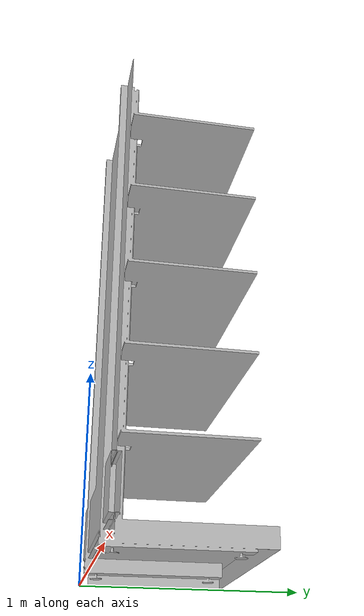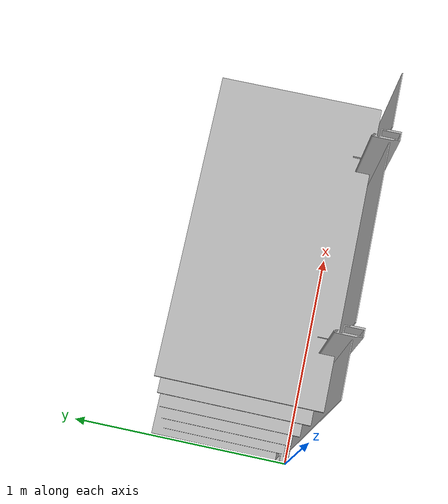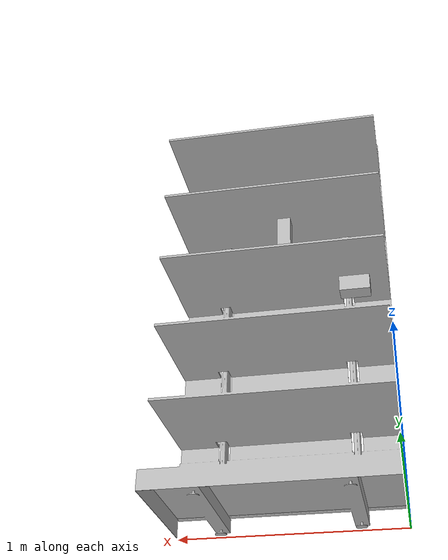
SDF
<?xml version="1.0"?>
<sdf version='1.6'>
  <model name='AH_shelf_filled_april'>
    <static>1</static>
    <link name='link'>
      <inertial>
        <mass>1</mass>
        <inertia>
          <ixx>1</ixx>
          <ixy>0</ixy>
          <ixz>0</ixz>
          <iyy>1</iyy>
          <iyz>0</iyz>
          <izz>1</izz>
        </inertia>
      </inertial>
      <pose frame=''>-0 0 0 0 0 0</pose>

      <visual name='visual'>
        <pose frame=''>0 0 0 0 0 0</pose>
        <geometry>
          <mesh>
            <uri>model://AH_shelf/AH_shelf.dae</uri>
            <scale>1 1 1</scale>
          </mesh>
        </geometry>
        <transparency>0</transparency>
        <cast_shadows>1</cast_shadows>
      </visual>

      <collision name='collision'>
        <laser_retro>0</laser_retro>
        <max_contacts>10</max_contacts>
        <pose frame=''>0 0 0 0 -0 0</pose>
        <geometry>
          <mesh>
            <uri>model://AH_shelf/AH_shelf.dae</uri>
            <scale>1 1 1</scale>
          </mesh>
        </geometry>
        <surface>
          <friction>
            <ode>
              <mu>1</mu>
              <mu2>1</mu2>
              <fdir1>0 0 0</fdir1>
              <slip1>0</slip1>
              <slip2>0</slip2>
            </ode>
            <torsional>
              <coefficient>1</coefficient>
              <patch_radius>0</patch_radius>
              <surface_radius>0</surface_radius>
              <use_patch_radius>1</use_patch_radius>
              <ode>
                <slip>0</slip>
              </ode>
            </torsional>
          </friction>
          <bounce>
            <restitution_coefficient>0</restitution_coefficient>
            <threshold>1e+06</threshold>
          </bounce>
          <contact>
            <collide_without_contact>0</collide_without_contact>
            <collide_without_contact_bitmask>1</collide_without_contact_bitmask>
            <collide_bitmask>1</collide_bitmask>
            <ode>
              <soft_cfm>0</soft_cfm>
              <soft_erp>0.2</soft_erp>
              <kp>1e+13</kp>
              <kd>1</kd>
              <max_vel>0.01</max_vel>
              <min_depth>0</min_depth>
            </ode>
            <bullet>
              <split_impulse>1</split_impulse>
              <split_impulse_penetration_threshold>-0.01</split_impulse_penetration_threshold>
              <soft_cfm>0</soft_cfm>
              <soft_erp>0.2</soft_erp>
              <kp>1e+13</kp>
              <kd>1</kd>
            </bullet>
          </contact>
        </surface>
      </collision>
    </link>

  <model name="board0">
    <pose>0 0.5 2.1 0 0 0</pose>
  </model>

  <model name="board1">
    <pose>0 0.5 1.6 0 0 0</pose>
  </model>

  <model name="board2">
    <pose>0 0.5 1.2 0 0 0</pose>

    <include>
      <uri>model://AH_hagelslag_puur_tag36_11_00018</uri>
      <pose>0.4444444444444444 0 0 0 0 1.57</pose>
    </include>
  </model>

  <model name="board3">
    <pose>0 0.5 0.9 0 0 0</pose>

    <include>
      <uri>model://AH_thee_mango_tag36_11_00030</uri>
      <pose>0.14285714285714285 0 0 0 0 1.57</pose>
    </include>
  </model>

  <model name="board4">
    <pose>0 0.5 0.65 0 0 0</pose>
  </model>

  <model name="board5">
    <pose>0 0.5 0.25 0 0 0</pose>
  </model>

  </model>
</sdf>

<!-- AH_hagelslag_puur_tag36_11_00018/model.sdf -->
<sdf version='1.6'>
  <model name='AH_hagelslag_puur_tag36_11_00018'>
    <static>0</static>
    <link name='link_0'>

      <inertial>
        <mass>0.1</mass>
        <inertia>
          <ixx>1.4e-03</ixx>
          <ixy>0</ixy>
          <ixz>0</ixz>
          <iyy>1.4e-03</iyy>
          <iyz>0</iyz>
          <izz>2.8e-03</izz>
        </inertia>
      </inertial>

      <pose frame=''>-0 0 0 0 -0 0</pose>

      <visual name='visual'>
        <pose frame=''>0 0 0 0 -0 0</pose>
        <geometry>
          <mesh>
            <uri>model://AH_hagelslag_puur/AH_hagelslag_puur_tag36_11_00018/AH_hagelslag_puur_tag36_11_00018.dae</uri>
            <scale>1 1 1</scale>
          </mesh>
        </geometry>
        <transparency>0</transparency>
        <cast_shadows>1</cast_shadows>
      </visual>

      <collision name='collision'>
        <laser_retro>0</laser_retro>
        <max_contacts>10</max_contacts>
        <pose frame=''>0 0 0 0 -0 0</pose>
        <geometry>
          <mesh>
            <uri>model://AH_hagelslag_puur/AH_hagelslag_puur_tag36_11_00018/AH_hagelslag_puur_tag36_11_00018.dae</uri>
            <scale>1 1 1</scale>
          </mesh>
        </geometry>
        <surface>
          <friction>
            <ode>
              <mu>1</mu>
              <mu2>1</mu2>
              <fdir1>0 0 0</fdir1>
              <slip1>0</slip1>
              <slip2>0</slip2>
            </ode>
            <torsional>
              <coefficient>1</coefficient>
              <patch_radius>0</patch_radius>
              <surface_radius>0</surface_radius>
              <use_patch_radius>1</use_patch_radius>
              <ode>
                <slip>0</slip>
              </ode>
            </torsional>
          </friction>
          <bounce>
            <restitution_coefficient>0</restitution_coefficient>
            <threshold>1e+06</threshold>
          </bounce>
          <contact>
            <collide_without_contact>0</collide_without_contact>
            <collide_without_contact_bitmask>1</collide_without_contact_bitmask>
            <collide_bitmask>1</collide_bitmask>
            <ode>
              <soft_cfm>0</soft_cfm>
              <soft_erp>0.2</soft_erp>
              <kp>1e+13</kp>
              <kd>1</kd>
              <max_vel>0.01</max_vel>
              <min_depth>0</min_depth>
            </ode>
            <bullet>
              <split_impulse>1</split_impulse>
              <split_impulse_penetration_threshold>-0.01</split_impulse_penetration_threshold>
              <soft_cfm>0</soft_cfm>
              <soft_erp>0.2</soft_erp>
              <kp>1e+13</kp>
              <kd>1</kd>
            </bullet>
          </contact>
        </surface>
      </collision>

    </link>
  </model>
</sdf>

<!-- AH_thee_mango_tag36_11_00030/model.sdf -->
<sdf version='1.6'>
  <model name='AH_thee_mango_tag36_11_00030'>
    <static>0</static>
    <link name='link_0'>

      <inertial>
        <mass>0.1</mass>
        <inertia>
          <ixx>1.4e-03</ixx>
          <ixy>0</ixy>
          <ixz>0</ixz>
          <iyy>1.4e-03</iyy>
          <iyz>0</iyz>
          <izz>2.8e-03</izz>
        </inertia>
      </inertial>

      <pose frame=''>-0 0 0 0 -0 0</pose>

      <visual name='visual'>
        <pose frame=''>0 0 0 0 -0 0</pose>
        <geometry>
          <mesh>
            <uri>model://AH_thee_mango/AH_thee_mango_tag36_11_00030/AH_thee_mango_tag36_11_00030.dae</uri>
            <scale>1 1 1</scale>
          </mesh>
        </geometry>
        <transparency>0</transparency>
        <cast_shadows>1</cast_shadows>
      </visual>

      <collision name='collision'>
        <laser_retro>0</laser_retro>
        <max_contacts>10</max_contacts>
        <pose frame=''>0 0 0 0 -0 0</pose>
        <geometry>
          <mesh>
            <uri>model://AH_thee_mango/AH_thee_mango_tag36_11_00030/AH_thee_mango_tag36_11_00030.dae</uri>
            <scale>1 1 1</scale>
          </mesh>
        </geometry>
        <surface>
          <friction>
            <ode>
              <mu>1</mu>
              <mu2>1</mu2>
              <fdir1>0 0 0</fdir1>
              <slip1>0</slip1>
              <slip2>0</slip2>
            </ode>
            <torsional>
              <coefficient>1</coefficient>
              <patch_radius>0</patch_radius>
              <surface_radius>0</surface_radius>
              <use_patch_radius>1</use_patch_radius>
              <ode>
                <slip>0</slip>
              </ode>
            </torsional>
          </friction>
          <bounce>
            <restitution_coefficient>0</restitution_coefficient>
            <threshold>1e+06</threshold>
          </bounce>
          <contact>
            <collide_without_contact>0</collide_without_contact>
            <collide_without_contact_bitmask>1</collide_without_contact_bitmask>
            <collide_bitmask>1</collide_bitmask>
            <ode>
              <soft_cfm>0</soft_cfm>
              <soft_erp>0.2</soft_erp>
              <kp>1e+13</kp>
              <kd>1</kd>
              <max_vel>0.01</max_vel>
              <min_depth>0</min_depth>
            </ode>
            <bullet>
              <split_impulse>1</split_impulse>
              <split_impulse_penetration_threshold>-0.01</split_impulse_penetration_threshold>
              <soft_cfm>0</soft_cfm>
              <soft_erp>0.2</soft_erp>
              <kp>1e+13</kp>
              <kd>1</kd>
            </bullet>
          </contact>
        </surface>
      </collision>

    </link>
  </model>
</sdf>
